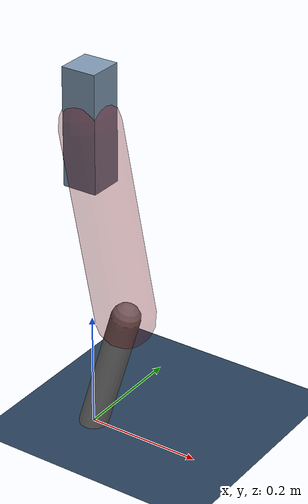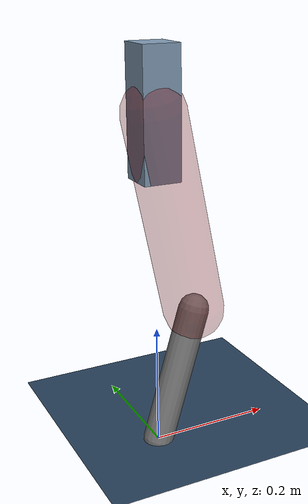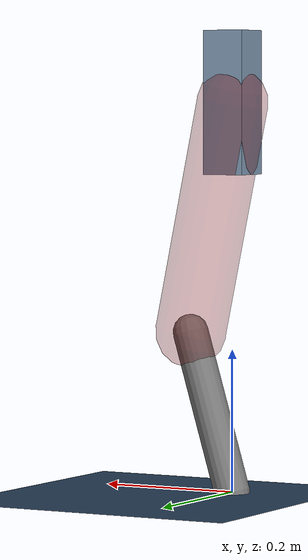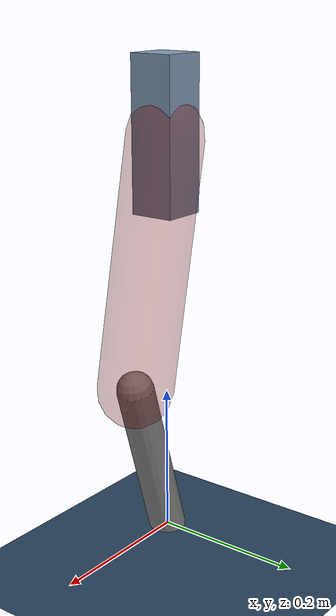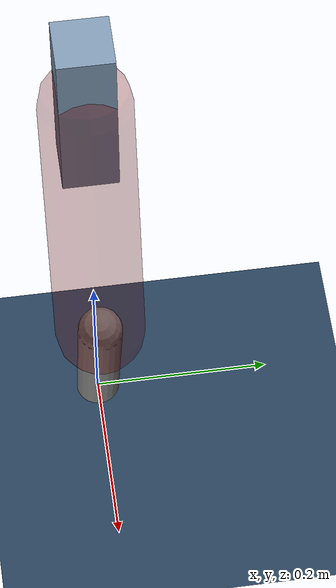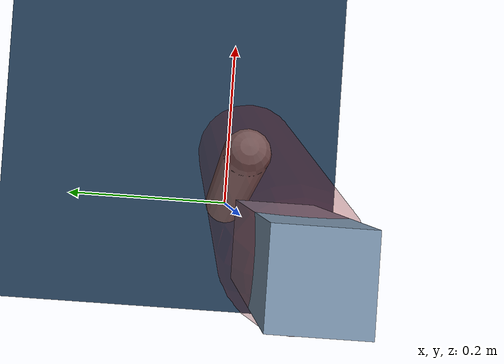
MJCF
<mujoco model="Hopper2D">
	<compiler inertiafromgeom="true" angle="radian" />
	<option timestep="0.001" integrator="implicit" cone="elliptic" solver="Newton" tolerance="1e-10" />

	<default>
		<geom contype="1" conaffinity="1" condim="3" friction="2 0.005 0.0001" solref="0.005 1" />
		<joint limited="true" damping="0.1" />
	</default>

	<asset>
		<texture name="skybox" type="skybox" builtin="gradient" rgb1=".4 .6 .8" rgb2="0 0 0" width="800" height="800" />
		<texture name="grid" type="2d" builtin="checker" rgb1=".1 .2 .3" rgb2=".2 .3 .4" width="300" height="300" mark="edge" markrgb=".2 .3 .4" />
		<material name="ground" texture="grid" texrepeat="1 1" texuniform="true" reflectance="0.1" />
		<material name="leg" rgba="0.5 0.6 0.7 1" />
	</asset>

	<worldbody>

		<geom name="floor" type="plane" size="5 5 0.25" material="ground" />

		<light directional="false" diffuse="0.8 0.8 0.8" specular="0.3 0.3 0.3" pos="0 0 2" dir="0 0 -1" />
		<light mode="targetbodycom" target="base" directional="false" diffuse="0.8 0.8 0.8" specular="0.3 0.3 0.3" pos="0 0 2" dir="0 0 -1" />

		<camera name="fixed" pos="0 -2 1" xyaxes="1 0 0 0 0 1" />
		<camera name="tracking" mode="trackcom" pos="0 -3 1" />

		<body name="root" pos="0 0 0.5446211478929451">
			<joint name="slide_x" type="slide" axis="1 0 0" range="-100 100" />
			<joint name="slide_z" type="slide" axis="0 0 1" range="0 10" />

			<body name="base" pos="0 0 0">
				<geom name="torso" type="box" size="0.03 0.03 0.1" mass="3.166" material="leg" />

				<body name="link1" pos="0 0 0" euler="0 1.3677078097832192 0">
					<joint type="hinge" axis="0 -1 0" pos="0 0 0" name="hinge1" limited="true" range="-3.14 3.14" stiffness="0" damping="0.1" />
					<geom name="thigh" type="capsule" fromto="0 0 0 0.32846675663378533 0 0" size="0.05" rgba="0.5 0 0 0.3" mass="1.0666069185745988" />

					<body name="link2" pos="0.32846675663378533 0 0" euler="0 0.4919863325345317 0">
						<joint type="hinge" axis="0 -1 0" pos="0 0 0" name="hinge2" limited="true" range="-3.14 3.14" stiffness="0" damping="0.1" />
						<geom name="shank" type="capsule" fromto="0 0 0 0.23254182814002625 0 0" size="0.025" mass="0.4280876453260236" />

					</body>
				</body>
			</body>
		</body>
	</worldbody>

	<actuator>
		<motor name="torque1" joint="hinge1" ctrlrange="-102.86275262793231 102.86275262793231" ctrllimited="true" gear="1" />
		<motor name="torque2" joint="hinge2" ctrlrange="-153.1712235789821 153.1712235789821" ctrllimited="true" gear="1" />
	</actuator>
</mujoco>
